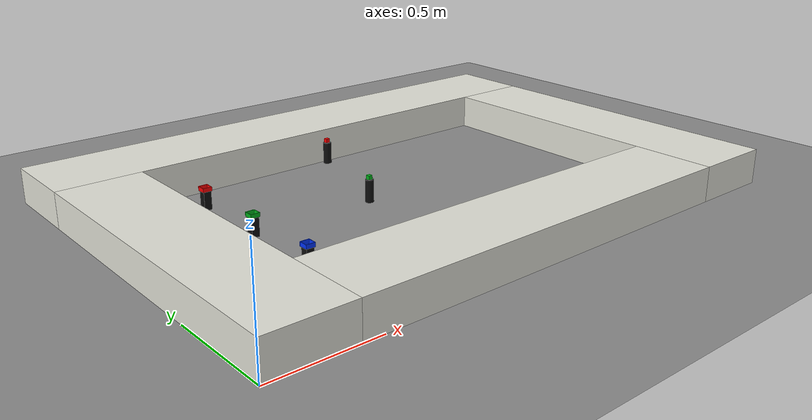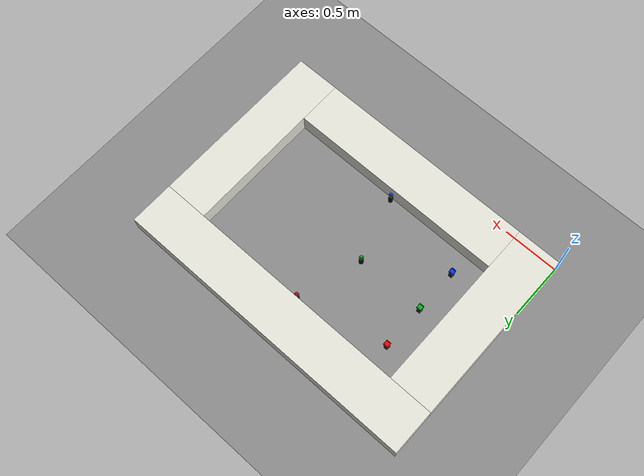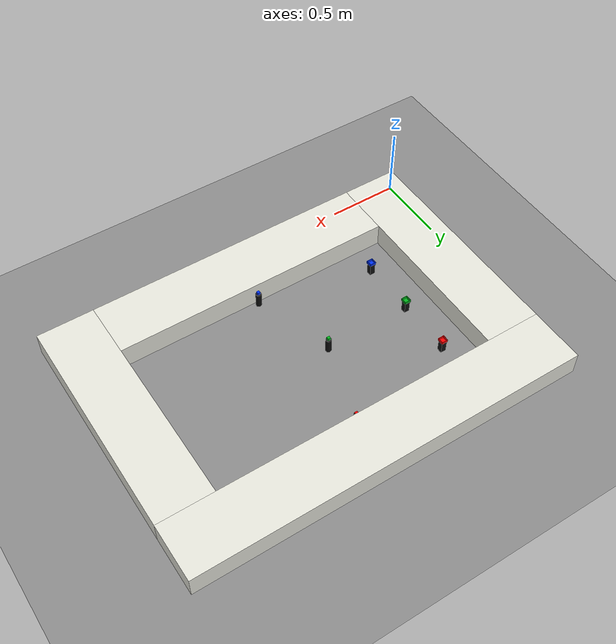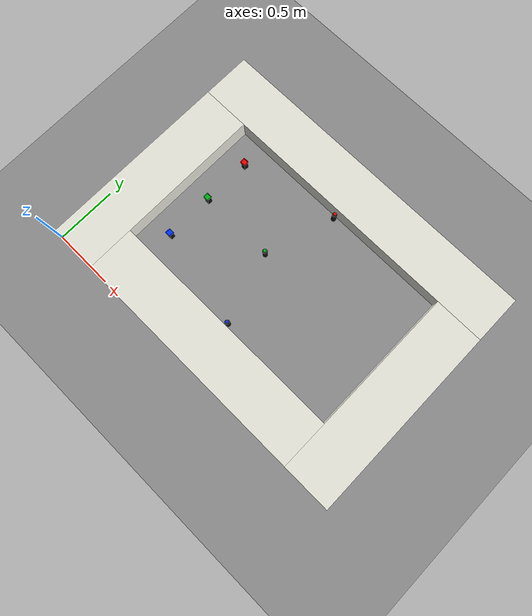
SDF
<?xml version="1.0"?>
<!-- Generado por gen_maze.py a partir de mazes/practica_brazo.yaml. No editar a mano: editar el YAML y regenerar. -->
<!-- Práctica del brazo: un cubo verde al alcance, delante del robot -->
<!-- Inicio del robot: x=1 y=1 yaw=0 -->
<sdf version="1.9">
  <world name="ros2_world">

    <plugin filename="gz-sim-physics-system"
            name="gz::sim::systems::Physics"/>

    <plugin filename="gz-sim-user-commands-system"
            name="gz::sim::systems::UserCommands"/>

    <plugin filename="gz-sim-scene-broadcaster-system"
            name="gz::sim::systems::SceneBroadcaster"/>

    <plugin filename="gz-sim-sensors-system"
            name="gz::sim::systems::Sensors">
      <render_engine>ogre2</render_engine>
    </plugin>

    <light type="directional" name="sun">
      <pose>0 0 10 0 0 0</pose>
      <diffuse>0.8 0.8 0.8 1</diffuse>
      <specular>0.2 0.2 0.2 1</specular>
      <direction>-0.5 0.1 -0.9</direction>
    </light>

    <model name="ground_plane">
      <static>true</static>
      <link name="link">
        <collision name="collision">
          <geometry>
            <plane>
              <normal>0 0 1</normal>
              <size>30 30</size>
            </plane>
          </geometry>
        </collision>
        <visual name="visual">
          <geometry>
            <plane>
              <normal>0 0 1</normal>
              <size>30 30</size>
            </plane>
          </geometry>
          <material>
            <ambient>0.55 0.55 0.55 1</ambient>
            <diffuse>0.55 0.55 0.55 1</diffuse>
          </material>
        </visual>
      </link>
    </model>

    <model name="paredes">
      <static>true</static>
      <link name="bloque_0">
        <pose>1.4 1.8 0.085 0 0 0</pose>
        <collision name="colision">
          <pose>0 0 0 0 0 0</pose>
          <geometry><box><size>2.8 0.4 0.17</size></box></geometry>
        </collision>
        <visual name="visual">
          <pose>0 0 0 0 0 0</pose>
          <geometry><box><size>2.8 0.4 0.17</size></box></geometry>
          <material>
            <ambient>0.9 0.9 0.86 1</ambient>
            <diffuse>0.9 0.9 0.86 1</diffuse>
          </material>
        </visual>
      </link>
      <link name="bloque_1">
        <pose>0.2 0.8 0.085 0 0 0</pose>
        <collision name="colision">
          <pose>0 0 0 0 0 0</pose>
          <geometry><box><size>0.4 1.6 0.17</size></box></geometry>
        </collision>
        <visual name="visual">
          <pose>0 0 0 0 0 0</pose>
          <geometry><box><size>0.4 1.6 0.17</size></box></geometry>
          <material>
            <ambient>0.9 0.9 0.86 1</ambient>
            <diffuse>0.9 0.9 0.86 1</diffuse>
          </material>
        </visual>
      </link>
      <link name="bloque_2">
        <pose>2.6 0.8 0.085 0 0 0</pose>
        <collision name="colision">
          <pose>0 0 0 0 0 0</pose>
          <geometry><box><size>0.4 1.6 0.17</size></box></geometry>
        </collision>
        <visual name="visual">
          <pose>0 0 0 0 0 0</pose>
          <geometry><box><size>0.4 1.6 0.17</size></box></geometry>
          <material>
            <ambient>0.9 0.9 0.86 1</ambient>
            <diffuse>0.9 0.9 0.86 1</diffuse>
          </material>
        </visual>
      </link>
      <link name="bloque_3">
        <pose>1.4 0.2 0.085 0 0 0</pose>
        <collision name="colision">
          <pose>0 0 0 0 0 0</pose>
          <geometry><box><size>2 0.4 0.17</size></box></geometry>
        </collision>
        <visual name="visual">
          <pose>0 0 0 0 0 0</pose>
          <geometry><box><size>2 0.4 0.17</size></box></geometry>
          <material>
            <ambient>0.9 0.9 0.86 1</ambient>
            <diffuse>0.9 0.9 0.86 1</diffuse>
          </material>
        </visual>
      </link>
    </model>

    <model name="soporte_canasto_rojo">
      <static>true</static>
      <pose>0.6 1.4 0.04425 0 0 0</pose>
      <link name="link">
        <collision name="colision">
          <pose>0 0 0 0 0 0</pose>
          <geometry><box><size>0.036 0.036 0.0885</size></box></geometry>
        </collision>
        <visual name="visual">
          <pose>0 0 0 0 0 0</pose>
          <geometry><box><size>0.036 0.036 0.0885</size></box></geometry>
          <material>
            <ambient>0.05 0.05 0.05 1</ambient>
            <diffuse>0.05 0.05 0.05 1</diffuse>
          </material>
        </visual>
      </link>
    </model>

    <model name="canasto_rojo">
      <static>true</static>
      <pose>0.6 1.4 0.0885 0 0 0</pose>
      <link name="link">
        <collision name="c_fondo">
          <pose>0 0 0.0005 0 0 0</pose>
          <geometry><box><size>0.044 0.044 0.001</size></box></geometry>
          <surface><friction><ode><mu>1</mu><mu2>1</mu2></ode></friction></surface>
        </collision>
        <visual name="v_fondo">
          <pose>0 0 0.0005 0 0 0</pose>
          <geometry><box><size>0.044 0.044 0.001</size></box></geometry>
          <material>
            <ambient>1 0 0 1</ambient>
            <diffuse>1 0 0 1</diffuse>
          </material>
        </visual>
        <collision name="c_pared_n">
          <pose>0 0.021 0.01 0 0 0</pose>
          <geometry><box><size>0.044 0.002 0.02</size></box></geometry>
          <surface><friction><ode><mu>1</mu><mu2>1</mu2></ode></friction></surface>
        </collision>
        <visual name="v_pared_n">
          <pose>0 0.021 0.01 0 0 0</pose>
          <geometry><box><size>0.044 0.002 0.02</size></box></geometry>
          <material>
            <ambient>1 0 0 1</ambient>
            <diffuse>1 0 0 1</diffuse>
          </material>
        </visual>
        <collision name="c_pared_s">
          <pose>0 -0.021 0.01 0 0 0</pose>
          <geometry><box><size>0.044 0.002 0.02</size></box></geometry>
          <surface><friction><ode><mu>1</mu><mu2>1</mu2></ode></friction></surface>
        </collision>
        <visual name="v_pared_s">
          <pose>0 -0.021 0.01 0 0 0</pose>
          <geometry><box><size>0.044 0.002 0.02</size></box></geometry>
          <material>
            <ambient>1 0 0 1</ambient>
            <diffuse>1 0 0 1</diffuse>
          </material>
        </visual>
        <collision name="c_pared_e">
          <pose>0.021 0 0.01 0 0 0</pose>
          <geometry><box><size>0.002 0.04 0.02</size></box></geometry>
          <surface><friction><ode><mu>1</mu><mu2>1</mu2></ode></friction></surface>
        </collision>
        <visual name="v_pared_e">
          <pose>0.021 0 0.01 0 0 0</pose>
          <geometry><box><size>0.002 0.04 0.02</size></box></geometry>
          <material>
            <ambient>1 0 0 1</ambient>
            <diffuse>1 0 0 1</diffuse>
          </material>
        </visual>
        <collision name="c_pared_o">
          <pose>-0.021 0 0.01 0 0 0</pose>
          <geometry><box><size>0.002 0.04 0.02</size></box></geometry>
          <surface><friction><ode><mu>1</mu><mu2>1</mu2></ode></friction></surface>
        </collision>
        <visual name="v_pared_o">
          <pose>-0.021 0 0.01 0 0 0</pose>
          <geometry><box><size>0.002 0.04 0.02</size></box></geometry>
          <material>
            <ambient>1 0 0 1</ambient>
            <diffuse>1 0 0 1</diffuse>
          </material>
        </visual>
      </link>
    </model>

    <model name="soporte_canasto_verde">
      <static>true</static>
      <pose>0.6 1 0.04425 0 0 0</pose>
      <link name="link">
        <collision name="colision">
          <pose>0 0 0 0 0 0</pose>
          <geometry><box><size>0.036 0.036 0.0885</size></box></geometry>
        </collision>
        <visual name="visual">
          <pose>0 0 0 0 0 0</pose>
          <geometry><box><size>0.036 0.036 0.0885</size></box></geometry>
          <material>
            <ambient>0.05 0.05 0.05 1</ambient>
            <diffuse>0.05 0.05 0.05 1</diffuse>
          </material>
        </visual>
      </link>
    </model>

    <model name="canasto_verde">
      <static>true</static>
      <pose>0.6 1 0.0885 0 0 0</pose>
      <link name="link">
        <collision name="c_fondo">
          <pose>0 0 0.0005 0 0 0</pose>
          <geometry><box><size>0.044 0.044 0.001</size></box></geometry>
          <surface><friction><ode><mu>1</mu><mu2>1</mu2></ode></friction></surface>
        </collision>
        <visual name="v_fondo">
          <pose>0 0 0.0005 0 0 0</pose>
          <geometry><box><size>0.044 0.044 0.001</size></box></geometry>
          <material>
            <ambient>0 0.7 0.1 1</ambient>
            <diffuse>0 0.7 0.1 1</diffuse>
          </material>
        </visual>
        <collision name="c_pared_n">
          <pose>0 0.021 0.01 0 0 0</pose>
          <geometry><box><size>0.044 0.002 0.02</size></box></geometry>
          <surface><friction><ode><mu>1</mu><mu2>1</mu2></ode></friction></surface>
        </collision>
        <visual name="v_pared_n">
          <pose>0 0.021 0.01 0 0 0</pose>
          <geometry><box><size>0.044 0.002 0.02</size></box></geometry>
          <material>
            <ambient>0 0.7 0.1 1</ambient>
            <diffuse>0 0.7 0.1 1</diffuse>
          </material>
        </visual>
        <collision name="c_pared_s">
          <pose>0 -0.021 0.01 0 0 0</pose>
          <geometry><box><size>0.044 0.002 0.02</size></box></geometry>
          <surface><friction><ode><mu>1</mu><mu2>1</mu2></ode></friction></surface>
        </collision>
        <visual name="v_pared_s">
          <pose>0 -0.021 0.01 0 0 0</pose>
          <geometry><box><size>0.044 0.002 0.02</size></box></geometry>
          <material>
            <ambient>0 0.7 0.1 1</ambient>
            <diffuse>0 0.7 0.1 1</diffuse>
          </material>
        </visual>
        <collision name="c_pared_e">
          <pose>0.021 0 0.01 0 0 0</pose>
          <geometry><box><size>0.002 0.04 0.02</size></box></geometry>
          <surface><friction><ode><mu>1</mu><mu2>1</mu2></ode></friction></surface>
        </collision>
        <visual name="v_pared_e">
          <pose>0.021 0 0.01 0 0 0</pose>
          <geometry><box><size>0.002 0.04 0.02</size></box></geometry>
          <material>
            <ambient>0 0.7 0.1 1</ambient>
            <diffuse>0 0.7 0.1 1</diffuse>
          </material>
        </visual>
        <collision name="c_pared_o">
          <pose>-0.021 0 0.01 0 0 0</pose>
          <geometry><box><size>0.002 0.04 0.02</size></box></geometry>
          <surface><friction><ode><mu>1</mu><mu2>1</mu2></ode></friction></surface>
        </collision>
        <visual name="v_pared_o">
          <pose>-0.021 0 0.01 0 0 0</pose>
          <geometry><box><size>0.002 0.04 0.02</size></box></geometry>
          <material>
            <ambient>0 0.7 0.1 1</ambient>
            <diffuse>0 0.7 0.1 1</diffuse>
          </material>
        </visual>
      </link>
    </model>

    <model name="soporte_canasto_azul">
      <static>true</static>
      <pose>0.6 0.6 0.04425 0 0 0</pose>
      <link name="link">
        <collision name="colision">
          <pose>0 0 0 0 0 0</pose>
          <geometry><box><size>0.036 0.036 0.0885</size></box></geometry>
        </collision>
        <visual name="visual">
          <pose>0 0 0 0 0 0</pose>
          <geometry><box><size>0.036 0.036 0.0885</size></box></geometry>
          <material>
            <ambient>0.05 0.05 0.05 1</ambient>
            <diffuse>0.05 0.05 0.05 1</diffuse>
          </material>
        </visual>
      </link>
    </model>

    <model name="canasto_azul">
      <static>true</static>
      <pose>0.6 0.6 0.0885 0 0 0</pose>
      <link name="link">
        <collision name="c_fondo">
          <pose>0 0 0.0005 0 0 0</pose>
          <geometry><box><size>0.044 0.044 0.001</size></box></geometry>
          <surface><friction><ode><mu>1</mu><mu2>1</mu2></ode></friction></surface>
        </collision>
        <visual name="v_fondo">
          <pose>0 0 0.0005 0 0 0</pose>
          <geometry><box><size>0.044 0.044 0.001</size></box></geometry>
          <material>
            <ambient>0 0.2 1 1</ambient>
            <diffuse>0 0.2 1 1</diffuse>
          </material>
        </visual>
        <collision name="c_pared_n">
          <pose>0 0.021 0.01 0 0 0</pose>
          <geometry><box><size>0.044 0.002 0.02</size></box></geometry>
          <surface><friction><ode><mu>1</mu><mu2>1</mu2></ode></friction></surface>
        </collision>
        <visual name="v_pared_n">
          <pose>0 0.021 0.01 0 0 0</pose>
          <geometry><box><size>0.044 0.002 0.02</size></box></geometry>
          <material>
            <ambient>0 0.2 1 1</ambient>
            <diffuse>0 0.2 1 1</diffuse>
          </material>
        </visual>
        <collision name="c_pared_s">
          <pose>0 -0.021 0.01 0 0 0</pose>
          <geometry><box><size>0.044 0.002 0.02</size></box></geometry>
          <surface><friction><ode><mu>1</mu><mu2>1</mu2></ode></friction></surface>
        </collision>
        <visual name="v_pared_s">
          <pose>0 -0.021 0.01 0 0 0</pose>
          <geometry><box><size>0.044 0.002 0.02</size></box></geometry>
          <material>
            <ambient>0 0.2 1 1</ambient>
            <diffuse>0 0.2 1 1</diffuse>
          </material>
        </visual>
        <collision name="c_pared_e">
          <pose>0.021 0 0.01 0 0 0</pose>
          <geometry><box><size>0.002 0.04 0.02</size></box></geometry>
          <surface><friction><ode><mu>1</mu><mu2>1</mu2></ode></friction></surface>
        </collision>
        <visual name="v_pared_e">
          <pose>0.021 0 0.01 0 0 0</pose>
          <geometry><box><size>0.002 0.04 0.02</size></box></geometry>
          <material>
            <ambient>0 0.2 1 1</ambient>
            <diffuse>0 0.2 1 1</diffuse>
          </material>
        </visual>
        <collision name="c_pared_o">
          <pose>-0.021 0 0.01 0 0 0</pose>
          <geometry><box><size>0.002 0.04 0.02</size></box></geometry>
          <surface><friction><ode><mu>1</mu><mu2>1</mu2></ode></friction></surface>
        </collision>
        <visual name="v_pared_o">
          <pose>-0.021 0 0.01 0 0 0</pose>
          <geometry><box><size>0.002 0.04 0.02</size></box></geometry>
          <material>
            <ambient>0 0.2 1 1</ambient>
            <diffuse>0 0.2 1 1</diffuse>
          </material>
        </visual>
      </link>
    </model>

    <model name="cubo_azul">
      <pose>1.4 0.425 0.1187 0 0 0</pose>
      <link name="link">
        <inertial>
          <mass>0.0099</mass>
          <inertia>
            <ixx>6.6000e-07</ixx><iyy>6.6000e-07</iyy><izz>6.6000e-07</izz><ixy>0</ixy><ixz>0</ixz><iyz>0</iyz>
          </inertia>
        </inertial>
        <collision name="colision">
          <pose>0 0 0 0 0 0</pose>
          <geometry><box><size>0.02 0.02 0.02</size></box></geometry>
          <surface><friction><ode><mu>1</mu><mu2>1</mu2></ode></friction></surface>
        </collision>
        <visual name="visual">
          <pose>0 0 0 0 0 0</pose>
          <geometry><box><size>0.02 0.02 0.02</size></box></geometry>
          <material>
            <ambient>0 0.2 1 1</ambient>
            <diffuse>0 0.2 1 1</diffuse>
          </material>
        </visual>
      </link>
    </model>

    <model name="cubo_verde">
      <pose>1.221 1 0.1187 0 0 0</pose>
      <link name="link">
        <inertial>
          <mass>0.0099</mass>
          <inertia>
            <ixx>6.6000e-07</ixx><iyy>6.6000e-07</iyy><izz>6.6000e-07</izz><ixy>0</ixy><ixz>0</ixz><iyz>0</iyz>
          </inertia>
        </inertial>
        <collision name="colision">
          <pose>0 0 0 0 0 0</pose>
          <geometry><box><size>0.02 0.02 0.02</size></box></geometry>
          <surface><friction><ode><mu>1</mu><mu2>1</mu2></ode></friction></surface>
        </collision>
        <visual name="visual">
          <pose>0 0 0 0 0 0</pose>
          <geometry><box><size>0.02 0.02 0.02</size></box></geometry>
          <material>
            <ambient>0 0.7 0.1 1</ambient>
            <diffuse>0 0.7 0.1 1</diffuse>
          </material>
        </visual>
      </link>
    </model>

    <model name="cubo_rojo">
      <pose>1.4 1.575 0.1187 0 0 0</pose>
      <link name="link">
        <inertial>
          <mass>0.0099</mass>
          <inertia>
            <ixx>6.6000e-07</ixx><iyy>6.6000e-07</iyy><izz>6.6000e-07</izz><ixy>0</ixy><ixz>0</ixz><iyz>0</iyz>
          </inertia>
        </inertial>
        <collision name="colision">
          <pose>0 0 0 0 0 0</pose>
          <geometry><box><size>0.02 0.02 0.02</size></box></geometry>
          <surface><friction><ode><mu>1</mu><mu2>1</mu2></ode></friction></surface>
        </collision>
        <visual name="visual">
          <pose>0 0 0 0 0 0</pose>
          <geometry><box><size>0.02 0.02 0.02</size></box></geometry>
          <material>
            <ambient>1 0 0 1</ambient>
            <diffuse>1 0 0 1</diffuse>
          </material>
        </visual>
      </link>
    </model>

    <model name="soporte_cubo_rojo">
      <static>true</static>
      <pose>1.4 1.575 0.05425 0 0 0</pose>
      <link name="link">
        <collision name="colision">
          <geometry><cylinder><radius>0.02</radius><length>0.1085</length></cylinder></geometry>
        </collision>
        <visual name="visual">
          <geometry><cylinder><radius>0.02</radius><length>0.1085</length></cylinder></geometry>
          <material>
            <ambient>0.05 0.05 0.05 1</ambient>
            <diffuse>0.05 0.05 0.05 1</diffuse>
          </material>
        </visual>
      </link>
    </model>

    <model name="soporte_cubo_verde">
      <static>true</static>
      <pose>1.221 1 0.05425 0 0 0</pose>
      <link name="link">
        <collision name="colision">
          <geometry><cylinder><radius>0.02</radius><length>0.1085</length></cylinder></geometry>
        </collision>
        <visual name="visual">
          <geometry><cylinder><radius>0.02</radius><length>0.1085</length></cylinder></geometry>
          <material>
            <ambient>0.05 0.05 0.05 1</ambient>
            <diffuse>0.05 0.05 0.05 1</diffuse>
          </material>
        </visual>
      </link>
    </model>

    <model name="soporte_cubo_azul">
      <static>true</static>
      <pose>1.4 0.425 0.05425 0 0 0</pose>
      <link name="link">
        <collision name="colision">
          <geometry><cylinder><radius>0.02</radius><length>0.1085</length></cylinder></geometry>
        </collision>
        <visual name="visual">
          <geometry><cylinder><radius>0.02</radius><length>0.1085</length></cylinder></geometry>
          <material>
            <ambient>0.05 0.05 0.05 1</ambient>
            <diffuse>0.05 0.05 0.05 1</diffuse>
          </material>
        </visual>
      </link>
    </model>

  </world>
</sdf>
